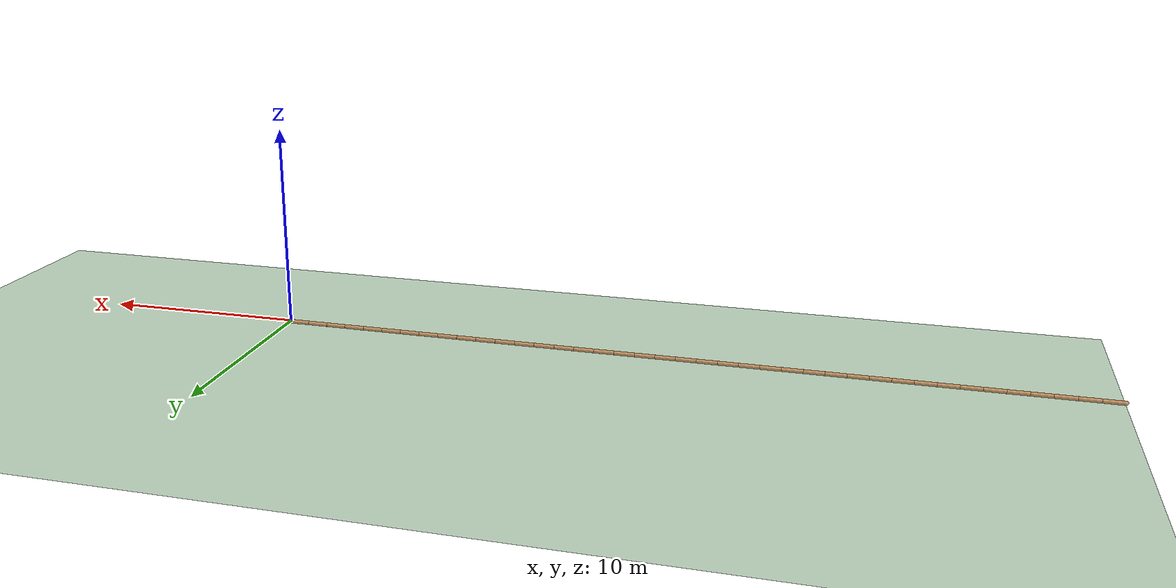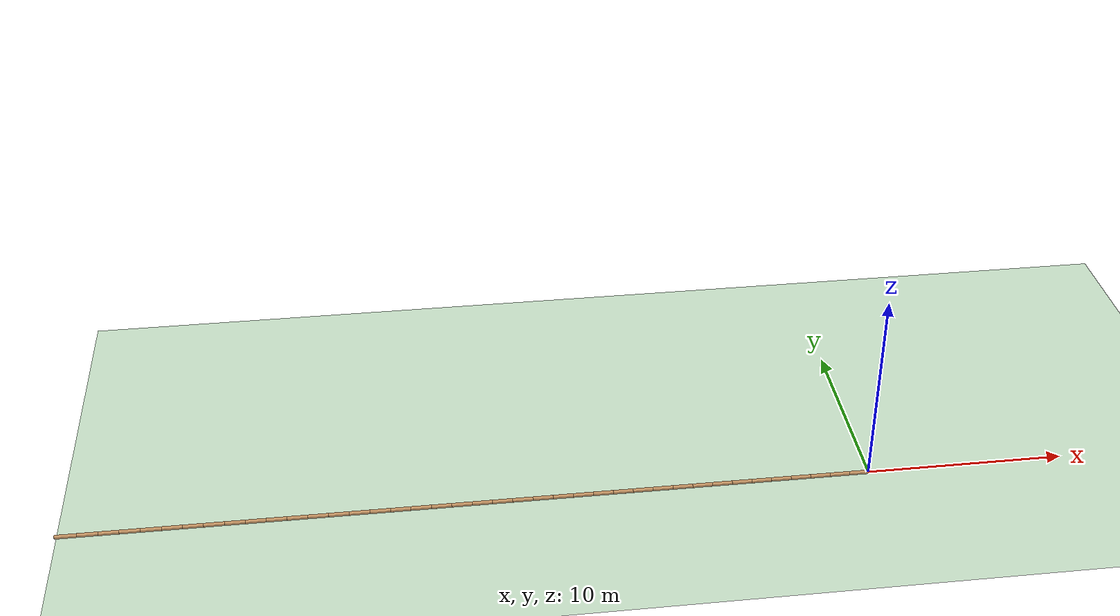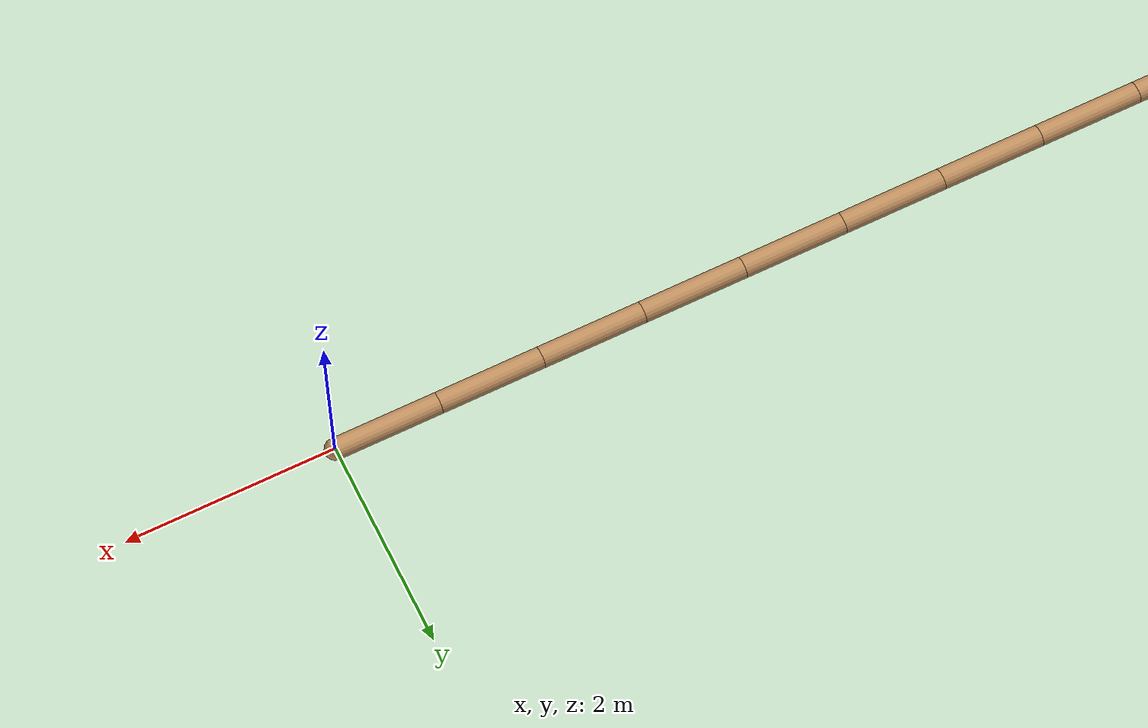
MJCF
<mujoco model="swimmer">
  <compiler angle="degree" coordinate="local" inertiafromgeom="true"/>
  <option collision="predefined" density="4000" integrator="RK4" timestep="0.01" viscosity="0.1"/>
  <default>
    <geom conaffinity="1" condim="1" contype="1" material="geom" rgba="0.8 0.6 .4 1"/>
    <joint armature='0.1'  />
  </default>
  <asset>
    <texture builtin="gradient" height="100" rgb1="1 1 1" rgb2="0 0 0" type="skybox" width="100"/>
    <texture builtin="flat" height="1278" mark="cross" markrgb="1 1 1" name="texgeom" random="0.01" rgb1="0.8 0.6 0.4" rgb2="0.8 0.6 0.4" type="cube" width="127"/>
    <texture builtin="checker" height="100" name="texplane" rgb1="0 0 0" rgb2="0.8 0.8 0.8" type="2d" width="100"/>
    <material name="MatPlane" reflectance="0.5" shininess="1" specular="1" texrepeat="30 30" texture="texplane"/>
    <material name="geom" texture="texgeom" texuniform="true"/>
  </asset>

  <worldbody>
    <light cutoff="100" diffuse="1 1 1" dir="-0 0 -1.3" directional="true" exponent="1" pos="0 0 1.3" specular=".1 .1 .1"/>
    <geom conaffinity="1" condim="3" material="MatPlane" name="floor" pos="0 0 -0.1" rgba="0.8 0.9 0.8 1" size="40 40 0.1" type="plane"/>
    <body name="podBody_1" pos="0 0 0">
      <geom name='pod_1' density="1000" fromto="0 0 0 -1 0 0" size="0.1" type="capsule"/>
      <joint axis="1 0 0" name="slider1" pos="0 0 0" type="slide"/>
      <joint axis="0 1 0" name="slider2" pos="0 0 0" type="slide"/>
      <joint axis="0 0 1" name="rot_1" pos="-1.5 0 0" type="hinge"/>
      <site name="tip" pos="0 0 0" size="0.02 0.02"/>
      <body name="podBody_2" pos="-1 0 0">
        <geom name='pod_2' density="1000" fromto="0 0 0 -1 0 0" size="0.1" type="capsule"/>
        <joint axis="0 0 1" limited="true" name="rot_2" pos="0 0 0" range="-100 100" type="hinge"/>

        <body name="podBody_3" pos="-1 0 0">
          <geom name='pod_3' density="1000" fromto="0 0 0 -1 0 0" size="0.1" type="capsule"/>
          <joint axis="0 0 1" limited="true" name="rot_3" pos="0 0 0" range="-100 100" type="hinge"/>

          <body name="podBody_4" pos="-1 0 0">
            <geom name='pod_4' density="1000" fromto="0 0 0 -1 0 0" size="0.1" type="capsule"/>
            <joint axis="0 0 1" limited="true" name="rot_4" pos="0 0 0" range="-100 100" type="hinge"/>

            <body name="podBody_5" pos="-1 0 0">
              <geom name='pod_5' density="1000" fromto="0 0 0 -1 0 0" size="0.1" type="capsule"/>
              <joint axis="0 0 1" limited="true" name="rot_5" pos="0 0 0" range="-100 100" type="hinge"/>

              <body name="podBody_6" pos="-1 0 0">
                <geom name='pod_6' density="1000" fromto="0 0 0 -1 0 0" size="0.1" type="capsule"/>
                <joint axis="0 0 1" limited="true" name="rot_6" pos="0 0 0" range="-100 100" type="hinge"/>

                <body name="podBody_7" pos="-1 0 0">
                  <geom name='pod_7' density="1000" fromto="0 0 0 -1 0 0" size="0.1" type="capsule"/>
                  <joint axis="0 0 1" limited="true" name="rot_7" pos="0 0 0" range="-100 100" type="hinge"/>

                  <body name="podBody_8" pos="-1 0 0">
                    <geom name='pod_8' density="1000" fromto="0 0 0 -1 0 0" size="0.1" type="capsule"/>
                    <joint axis="0 0 1" limited="true" name="rot_8" pos="0 0 0" range="-100 100" type="hinge"/>

                    <body name="podBody_9" pos="-1 0 0">
                      <geom name='pod_9' density="1000" fromto="0 0 0 -1 0 0" size="0.1" type="capsule"/>
                      <joint axis="0 0 1" limited="true" name="rot_9" pos="0 0 0" range="-100 100" type="hinge"/>

                      <body name="podBody_10" pos="-1 0 0">
                        <geom name='pod_10' density="1000" fromto="0 0 0 -1 0 0" size="0.1" type="capsule"/>
                        <joint axis="0 0 1" limited="true" name="rot_10" pos="0 0 0" range="-100 100" type="hinge"/>

                        <body name="podBody_11" pos="-1 0 0">
                          <geom name='pod_11' density="1000" fromto="0 0 0 -1 0 0" size="0.1" type="capsule"/>
                          <joint axis="0 0 1" limited="true" name="rot_11" pos="0 0 0" range="-100 100" type="hinge"/>

                          <body name="podBody_12" pos="-1 0 0">
                            <geom name='pod_12' density="1000" fromto="0 0 0 -1 0 0" size="0.1" type="capsule"/>
                            <joint axis="0 0 1" limited="true" name="rot_12" pos="0 0 0" range="-100 100" type="hinge"/>

                            <body name="podBody_13" pos="-1 0 0">
                              <geom name='pod_13' density="1000" fromto="0 0 0 -1 0 0" size="0.1" type="capsule"/>
                              <joint axis="0 0 1" limited="true" name="rot_13" pos="0 0 0" range="-100 100" type="hinge"/>

                              <body name="podBody_14" pos="-1 0 0">
                                <geom name='pod_14' density="1000" fromto="0 0 0 -1 0 0" size="0.1" type="capsule"/>
                                <joint axis="0 0 1" limited="true" name="rot_14" pos="0 0 0" range="-100 100" type="hinge"/>

                                <body name="podBody_15" pos="-1 0 0">
                                  <geom name='pod_15' density="1000" fromto="0 0 0 -1 0 0" size="0.1" type="capsule"/>
                                  <joint axis="0 0 1" limited="true" name="rot_15" pos="0 0 0" range="-100 100" type="hinge"/>

                                  <body name="podBody_16" pos="-1 0 0">
                                    <geom name='pod_16' density="1000" fromto="0 0 0 -1 0 0" size="0.1" type="capsule"/>
                                    <joint axis="0 0 1" limited="true" name="rot_16" pos="0 0 0" range="-100 100" type="hinge"/>

                                    <body name="podBody_17" pos="-1 0 0">
                                      <geom name='pod_17' density="1000" fromto="0 0 0 -1 0 0" size="0.1" type="capsule"/>
                                      <joint axis="0 0 1" limited="true" name="rot_17" pos="0 0 0" range="-100 100" type="hinge"/>

                                      <body name="podBody_18" pos="-1 0 0">
                                        <geom name='pod_18' density="1000" fromto="0 0 0 -1 0 0" size="0.1" type="capsule"/>
                                        <joint axis="0 0 1" limited="true" name="rot_18" pos="0 0 0" range="-100 100" type="hinge"/>

                                        <body name="podBody_19" pos="-1 0 0">
                                          <geom name='pod_19' density="1000" fromto="0 0 0 -1 0 0" size="0.1" type="capsule"/>
                                          <joint axis="0 0 1" limited="true" name="rot_19" pos="0 0 0" range="-100 100" type="hinge"/>

                                          <body name="podBody_20" pos="-1 0 0">
                                            <geom name='pod_20' density="1000" fromto="0 0 0 -1 0 0" size="0.1" type="capsule"/>
                                            <joint axis="0 0 1" limited="true" name="rot_20" pos="0 0 0" range="-100 100" type="hinge"/>

                                            <body name="podBody_21" pos="-1 0 0">
                                              <geom name='pod_21' density="1000" fromto="0 0 0 -1 0 0" size="0.1" type="capsule"/>
                                              <joint axis="0 0 1" limited="true" name="rot_21" pos="0 0 0" range="-100 100" type="hinge"/>

                                              <body name="podBody_22" pos="-1 0 0">
                                                <geom name='pod_22' density="1000" fromto="0 0 0 -1 0 0" size="0.1" type="capsule"/>
                                                <joint axis="0 0 1" limited="true" name="rot_22" pos="0 0 0" range="-100 100" type="hinge"/>

                                                <body name="podBody_23" pos="-1 0 0">
                                                  <geom name='pod_23' density="1000" fromto="0 0 0 -1 0 0" size="0.1" type="capsule"/>
                                                  <joint axis="0 0 1" limited="true" name="rot_23" pos="0 0 0" range="-100 100" type="hinge"/>

                                                  <body name="podBody_24" pos="-1 0 0">
                                                    <geom name='pod_24' density="1000" fromto="0 0 0 -1 0 0" size="0.1" type="capsule"/>
                                                    <joint axis="0 0 1" limited="true" name="rot_24" pos="0 0 0" range="-100 100" type="hinge"/>

                                                    <body name="podBody_25" pos="-1 0 0">
                                                      <geom name='pod_25' density="1000" fromto="0 0 0 -1 0 0" size="0.1" type="capsule"/>
                                                      <joint axis="0 0 1" limited="true" name="rot_25" pos="0 0 0" range="-100 100" type="hinge"/>

                                                      <body name="podBody_26" pos="-1 0 0">
                                                        <geom name='pod_26' density="1000" fromto="0 0 0 -1 0 0" size="0.1" type="capsule"/>
                                                        <joint axis="0 0 1" limited="true" name="rot_26" pos="0 0 0" range="-100 100" type="hinge"/>

                                                        <body name="podBody_27" pos="-1 0 0">
                                                          <geom name='pod_27' density="1000" fromto="0 0 0 -1 0 0" size="0.1" type="capsule"/>
                                                          <joint axis="0 0 1" limited="true" name="rot_27" pos="0 0 0" range="-100 100" type="hinge"/>

                                                          <body name="podBody_28" pos="-1 0 0">
                                                            <geom name='pod_28' density="1000" fromto="0 0 0 -1 0 0" size="0.1" type="capsule"/>
                                                            <joint axis="0 0 1" limited="true" name="rot_28" pos="0 0 0" range="-100 100" type="hinge"/>

                                                            <body name="podBody_29" pos="-1 0 0">
                                                              <geom name='pod_29' density="1000" fromto="0 0 0 -1 0 0" size="0.1" type="capsule"/>
                                                              <joint axis="0 0 1" limited="true" name="rot_29" pos="0 0 0" range="-100 100" type="hinge"/>

                                                              <body name="podBody_30" pos="-1 0 0">
                                                                <geom name='pod_30' density="1000" fromto="0 0 0 -1 0 0" size="0.1" type="capsule"/>
                                                                <joint axis="0 0 1" limited="true" name="rot_30" pos="0 0 0" range="-100 100" type="hinge"/>

                                                                <body name="podBody_31" pos="-1 0 0">
                                                                  <geom name='pod_31' density="1000" fromto="0 0 0 -1 0 0" size="0.1" type="capsule"/>
                                                                  <joint axis="0 0 1" limited="true" name="rot_31" pos="0 0 0" range="-100 100" type="hinge"/>

                                                                  <body name="podBody_32" pos="-1 0 0">
                                                                    <geom name='pod_32' density="1000" fromto="0 0 0 -1 0 0" size="0.1" type="capsule"/>
                                                                    <joint axis="0 0 1" limited="true" name="rot_32" pos="0 0 0" range="-100 100" type="hinge"/>

                                                                    <body name="podBody_33" pos="-1 0 0">
                                                                      <geom name='pod_33' density="1000" fromto="0 0 0 -1 0 0" size="0.1" type="capsule"/>
                                                                      <joint axis="0 0 1" limited="true" name="rot_33" pos="0 0 0" range="-100 100" type="hinge"/>

                                                                      <body name="podBody_34" pos="-1 0 0">
                                                                        <geom name='pod_34' density="1000" fromto="0 0 0 -1 0 0" size="0.1" type="capsule"/>
                                                                        <joint axis="0 0 1" limited="true" name="rot_34" pos="0 0 0" range="-100 100" type="hinge"/>

                                                                        <body name="podBody_35" pos="-1 0 0">
                                                                          <geom name='pod_35' density="1000" fromto="0 0 0 -1 0 0" size="0.1" type="capsule"/>
                                                                          <joint axis="0 0 1" limited="true" name="rot_35" pos="0 0 0" range="-100 100" type="hinge"/>

                                                                          <body name="podBody_36" pos="-1 0 0">
                                                                            <geom name='pod_36' density="1000" fromto="0 0 0 -1 0 0" size="0.1" type="capsule"/>
                                                                            <joint axis="0 0 1" limited="true" name="rot_36" pos="0 0 0" range="-100 100" type="hinge"/>

                                                                            <body name="podBody_37" pos="-1 0 0">
                                                                              <geom name='pod_37' density="1000" fromto="0 0 0 -1 0 0" size="0.1" type="capsule"/>
                                                                              <joint axis="0 0 1" limited="true" name="rot_37" pos="0 0 0" range="-100 100" type="hinge"/>

                                                                              <body name="podBody_38" pos="-1 0 0">
                                                                                <geom name='pod_38' density="1000" fromto="0 0 0 -1 0 0" size="0.1" type="capsule"/>
                                                                                <joint axis="0 0 1" limited="true" name="rot_38" pos="0 0 0" range="-100 100" type="hinge"/>

                                                                                <body name="podBody_39" pos="-1 0 0">
                                                                                  <geom name='pod_39' density="1000" fromto="0 0 0 -1 0 0" size="0.1" type="capsule"/>
                                                                                  <joint axis="0 0 1" limited="true" name="rot_39" pos="0 0 0" range="-100 100" type="hinge"/>

                                                                                  <body name="podBody_40" pos="-1 0 0">
                                                                                    <geom name='pod_40' density="1000" fromto="0 0 0 -1 0 0" size="0.1" type="capsule"/>
                                                                                    <joint axis="0 0 1" limited="true" name="rot_40" pos="0 0 0" range="-100 100" type="hinge"/>

                                                                                  </body>
                                                                                </body>
                                                                              </body>
                                                                            </body>
                                                                          </body>
                                                                        </body>
                                                                      </body>
                                                                    </body>
                                                                  </body>
                                                                </body>
                                                              </body>
                                                            </body>
                                                          </body>
                                                        </body>
                                                      </body>
                                                    </body>
                                                  </body>
                                                </body>
                                              </body>
                                            </body>
                                          </body>
                                        </body>
                                      </body>
                                    </body>
                                  </body>
                                </body>
                              </body>
                            </body>
                          </body>
                        </body>
                      </body>
                    </body>
                  </body>
                </body>
              </body>
            </body>
          </body>
        </body>

      </body>
    </body>
  </worldbody>
  <actuator>
    <motor ctrllimited="true" ctrlrange="-1 1" gear="150.0" joint="rot_2"/>
    <motor ctrllimited="true" ctrlrange="-1 1" gear="150.0" joint="rot_3"/>
    <motor ctrllimited="true" ctrlrange="-1 1" gear="150.0" joint="rot_4"/>
    <motor ctrllimited="true" ctrlrange="-1 1" gear="150.0" joint="rot_5"/>
    <motor ctrllimited="true" ctrlrange="-1 1" gear="150.0" joint="rot_6"/>
    <motor ctrllimited="true" ctrlrange="-1 1" gear="150.0" joint="rot_7"/>
    <motor ctrllimited="true" ctrlrange="-1 1" gear="150.0" joint="rot_8"/>
    <motor ctrllimited="true" ctrlrange="-1 1" gear="150.0" joint="rot_9"/>
    <motor ctrllimited="true" ctrlrange="-1 1" gear="150.0" joint="rot_10"/>
    <motor ctrllimited="true" ctrlrange="-1 1" gear="150.0" joint="rot_11"/>
    <motor ctrllimited="true" ctrlrange="-1 1" gear="150.0" joint="rot_12"/>
    <motor ctrllimited="true" ctrlrange="-1 1" gear="150.0" joint="rot_13"/>
    <motor ctrllimited="true" ctrlrange="-1 1" gear="150.0" joint="rot_14"/>
    <motor ctrllimited="true" ctrlrange="-1 1" gear="150.0" joint="rot_15"/>
    <motor ctrllimited="true" ctrlrange="-1 1" gear="150.0" joint="rot_16"/>
    <motor ctrllimited="true" ctrlrange="-1 1" gear="150.0" joint="rot_17"/>
    <motor ctrllimited="true" ctrlrange="-1 1" gear="150.0" joint="rot_18"/>
    <motor ctrllimited="true" ctrlrange="-1 1" gear="150.0" joint="rot_19"/>
    <motor ctrllimited="true" ctrlrange="-1 1" gear="150.0" joint="rot_20"/>
    <motor ctrllimited="true" ctrlrange="-1 1" gear="150.0" joint="rot_21"/>
    <motor ctrllimited="true" ctrlrange="-1 1" gear="150.0" joint="rot_22"/>
    <motor ctrllimited="true" ctrlrange="-1 1" gear="150.0" joint="rot_23"/>
    <motor ctrllimited="true" ctrlrange="-1 1" gear="150.0" joint="rot_24"/>
    <motor ctrllimited="true" ctrlrange="-1 1" gear="150.0" joint="rot_25"/>
    <motor ctrllimited="true" ctrlrange="-1 1" gear="150.0" joint="rot_26"/>
    <motor ctrllimited="true" ctrlrange="-1 1" gear="150.0" joint="rot_27"/>
    <motor ctrllimited="true" ctrlrange="-1 1" gear="150.0" joint="rot_28"/>
    <motor ctrllimited="true" ctrlrange="-1 1" gear="150.0" joint="rot_29"/>
    <motor ctrllimited="true" ctrlrange="-1 1" gear="150.0" joint="rot_30"/>
    <motor ctrllimited="true" ctrlrange="-1 1" gear="150.0" joint="rot_31"/>
    <motor ctrllimited="true" ctrlrange="-1 1" gear="150.0" joint="rot_32"/>
    <motor ctrllimited="true" ctrlrange="-1 1" gear="150.0" joint="rot_33"/>
    <motor ctrllimited="true" ctrlrange="-1 1" gear="150.0" joint="rot_34"/>
    <motor ctrllimited="true" ctrlrange="-1 1" gear="150.0" joint="rot_35"/>
    <motor ctrllimited="true" ctrlrange="-1 1" gear="150.0" joint="rot_36"/>
    <motor ctrllimited="true" ctrlrange="-1 1" gear="150.0" joint="rot_37"/>
    <motor ctrllimited="true" ctrlrange="-1 1" gear="150.0" joint="rot_38"/>
    <motor ctrllimited="true" ctrlrange="-1 1" gear="150.0" joint="rot_39"/>
    <motor ctrllimited="true" ctrlrange="-1 1" gear="150.0" joint="rot_40"/>
  </actuator>

</mujoco>
